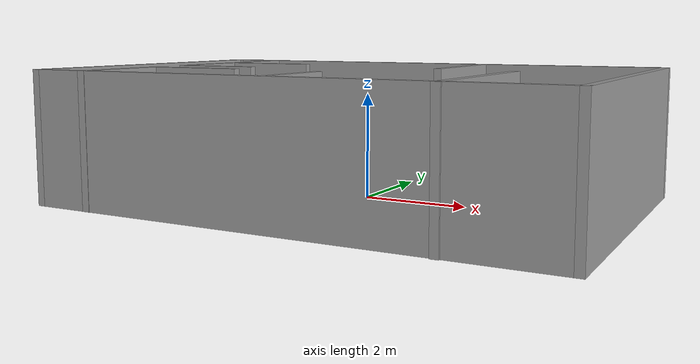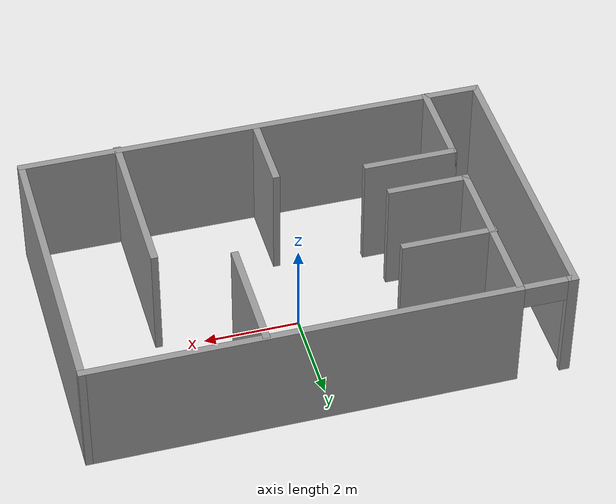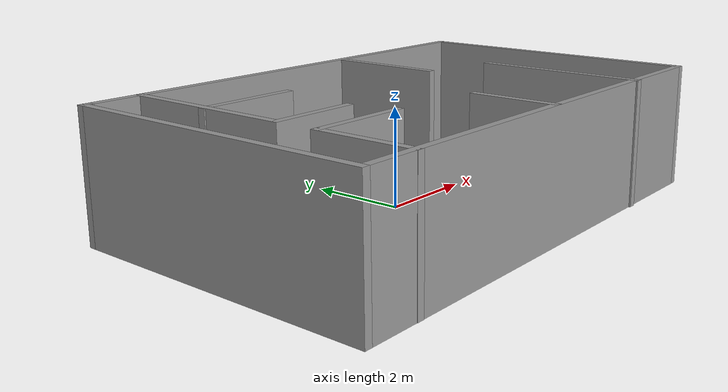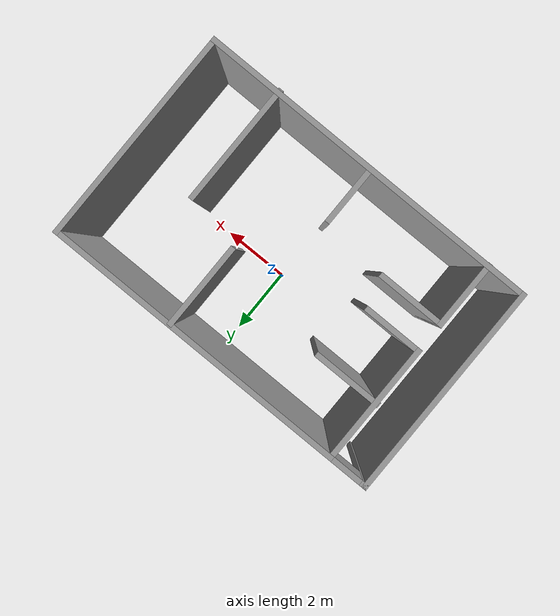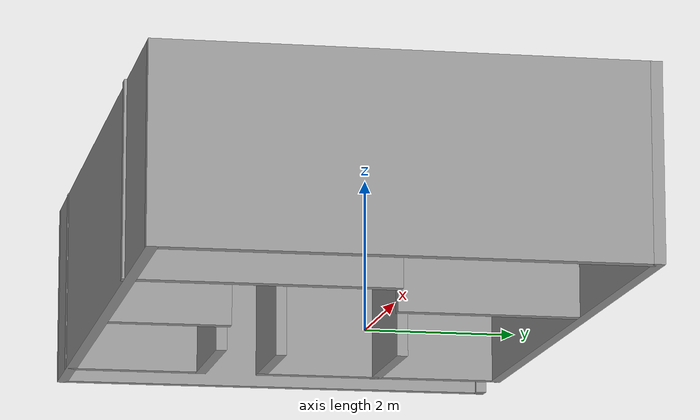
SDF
<?xml version='1.0'?>
<sdf version='1.6'>
  <model name='Maze'>
    <pose frame=''>0.041405 -0.440623 0 0 -0 0</pose>
    <link name='Wall_0'>
      <collision name='Wall_0_Collision'>
        <geometry>
          <box>
            <size>6.25 0.15 2.5</size>
          </box>
        </geometry>
        <pose frame=''>0 0 1.25 0 -0 0</pose>
      </collision>
      <visual name='Wall_0_Visual'>
        <pose frame=''>0 0 1.25 0 -0 0</pose>
        <geometry>
          <box>
            <size>6.25 0.15 2.5</size>
          </box>
        </geometry>
        <material>
          <script>
            <uri>file://media/materials/scripts/gazebo.material</uri>
            <name>Gazebo/Grey</name>
          </script>
          <emissive>1 1 1 1</emissive>
        </material>
        <meta>
          <layer>0</layer>
        </meta>
      </visual>
      <pose frame=''>-4.925 0.017238 0 0 -0 -1.5708</pose>
    </link>
    <link name='Wall_1'>
      <collision name='Wall_1_Collision'>
        <geometry>
          <box>
            <size>10 0.15 2.5</size>
          </box>
        </geometry>
        <pose frame=''>0 0 1.25 0 -0 0</pose>
      </collision>
      <visual name='Wall_1_Visual'>
        <pose frame=''>0 0 1.25 0 -0 0</pose>
        <geometry>
          <box>
            <size>10 0.15 2.5</size>
          </box>
        </geometry>
        <material>
          <script>
            <uri>file://media/materials/scripts/gazebo.material</uri>
            <name>Gazebo/Grey</name>
          </script>
          <emissive>1 1 1 1</emissive>
        </material>
        <meta>
          <layer>0</layer>
        </meta>
      </visual>
      <pose frame=''>-0 -3.03276 0 0 -0 0</pose>
    </link>
    <link name='Wall_10'>
      <collision name='Wall_10_Collision'>
        <geometry>
          <box>
            <size>2 0.15 2.5</size>
          </box>
        </geometry>
        <pose frame=''>0 0 1.25 0 -0 0</pose>
      </collision>
      <visual name='Wall_10_Visual'>
        <pose frame=''>0 0 1.25 0 -0 0</pose>
        <geometry>
          <box>
            <size>2 0.15 2.5</size>
          </box>
        </geometry>
        <material>
          <script>
            <uri>file://media/materials/scripts/gazebo.material</uri>
            <name>Gazebo/Grey</name>
          </script>
          <emissive>1 1 1 1</emissive>
        </material>
        <meta>
          <layer>0</layer>
        </meta>
      </visual>
      <pose frame=''>-3.81506 -2.11564 0 0 -0 1.5708</pose>
    </link>
    <link name='Wall_11'>
      <collision name='Wall_11_Collision'>
        <geometry>
          <box>
            <size>2 0.15 2.5</size>
          </box>
        </geometry>
        <pose frame=''>0 0 1.25 0 -0 0</pose>
      </collision>
      <visual name='Wall_11_Visual'>
        <pose frame=''>0 0 1.25 0 -0 0</pose>
        <geometry>
          <box>
            <size>2 0.15 2.5</size>
          </box>
        </geometry>
        <material>
          <script>
            <uri>file://media/materials/scripts/gazebo.material</uri>
            <name>Gazebo/Grey</name>
          </script>
          <emissive>1 1 1 1</emissive>
        </material>
        <meta>
          <layer>0</layer>
        </meta>
      </visual>
      <pose frame=''>-2.89006 -1.19064 0 0 -0 0</pose>
    </link>
    <link name='Wall_13'>
      <collision name='Wall_13_Collision'>
        <geometry>
          <box>
            <size>1.75 0.15 2.5</size>
          </box>
        </geometry>
        <pose frame=''>0 0 1.25 0 -0 0</pose>
      </collision>
      <visual name='Wall_13_Visual'>
        <pose frame=''>0 0 1.25 0 -0 0</pose>
        <geometry>
          <box>
            <size>1.75 0.15 2.5</size>
          </box>
        </geometry>
        <material>
          <script>
            <uri>file://media/materials/scripts/gazebo.material</uri>
            <name>Gazebo/Grey</name>
          </script>
          <emissive>1 1 1 1</emissive>
        </material>
        <meta>
          <layer>0</layer>
        </meta>
      </visual>
      <pose frame=''>-0.064432 -2.21404 0 0 -0 1.5708</pose>
    </link>
    <link name='Wall_15'>
      <collision name='Wall_15_Collision'>
        <geometry>
          <box>
            <size>2.5 0.15 2.5</size>
          </box>
        </geometry>
        <pose frame=''>0 0 1.25 0 -0 0</pose>
      </collision>
      <visual name='Wall_15_Visual'>
        <pose frame=''>0 0 1.25 0 -0 0</pose>
        <geometry>
          <box>
            <size>2.5 0.15 2.5</size>
          </box>
        </geometry>
        <material>
          <script>
            <uri>file://media/materials/scripts/gazebo.material</uri>
            <name>Gazebo/Grey</name>
          </script>
          <emissive>1 1 1 1</emissive>
        </material>
        <meta>
          <layer>0</layer>
        </meta>
      </visual>
      <pose frame=''>1.31878 1.84921 0 0 -0 -1.5708</pose>
    </link>
    <link name='Wall_17'>
      <collision name='Wall_17_Collision'>
        <geometry>
          <box>
            <size>3.5 0.15 2.5</size>
          </box>
        </geometry>
        <pose frame=''>0 0 1.25 0 -0 0</pose>
      </collision>
      <visual name='Wall_17_Visual'>
        <pose frame=''>0 0 1.25 0 -0 0</pose>
        <geometry>
          <box>
            <size>3.5 0.15 2.5</size>
          </box>
        </geometry>
        <material>
          <script>
            <uri>file://media/materials/scripts/gazebo.material</uri>
            <name>Gazebo/Grey</name>
          </script>
          <emissive>1 1 1 1</emissive>
        </material>
        <meta>
          <layer>0</layer>
        </meta>
      </visual>
      <pose frame=''>2.88819 -1.39224 0 0 -0 1.5708</pose>
    </link>
    <link name='Wall_2'>
      <collision name='Wall_2_Collision'>
        <geometry>
          <box>
            <size>6.25 0.15 2.5</size>
          </box>
        </geometry>
        <pose frame=''>0 0 1.25 0 -0 0</pose>
      </collision>
      <visual name='Wall_2_Visual'>
        <pose frame=''>0 0 1.25 0 -0 0</pose>
        <geometry>
          <box>
            <size>6.25 0.15 2.5</size>
          </box>
        </geometry>
        <material>
          <script>
            <uri>file://media/materials/scripts/gazebo.material</uri>
            <name>Gazebo/Grey</name>
          </script>
          <emissive>1 1 1 1</emissive>
        </material>
        <meta>
          <layer>0</layer>
        </meta>
      </visual>
      <pose frame=''>4.925 0.017238 0 0 -0 1.5708</pose>
    </link>
    <link name='Wall_3'>
      <pose frame=''>-0 3.06724 0 0 -0 3.14159</pose>
      <visual name='Wall_3_Visual_0'>
        <pose frame=''>-0.559831 0 1.25 0 -0 0</pose>
        <geometry>
          <box>
            <size>8.88034 0.15 2.5</size>
          </box>
        </geometry>
        <material>
          <script>
            <uri>file://media/materials/scripts/gazebo.material</uri>
            <name>Gazebo/Grey</name>
          </script>
          <emissive>1 1 1 1</emissive>
        </material>
        <meta>
          <layer>0</layer>
        </meta>
      </visual>
      <collision name='Wall_3_Collision_0'>
        <geometry>
          <box>
            <size>8.88034 0.15 2.5</size>
          </box>
        </geometry>
        <pose frame=''>-0.559831 0 1.25 0 -0 0</pose>
      </collision>
      <visual name='Wall_3_Visual_1'>
        <pose frame=''>4.89017 0 1.25 0 -0 0</pose>
        <geometry>
          <box>
            <size>0.219662 0.15 2.5</size>
          </box>
        </geometry>
        <material>
          <script>
            <uri>file://media/materials/scripts/gazebo.material</uri>
            <name>Gazebo/Grey</name>
          </script>
          <emissive>1 1 1 1</emissive>
        </material>
        <meta>
          <layer>0</layer>
        </meta>
      </visual>
      <collision name='Wall_3_Collision_1'>
        <geometry>
          <box>
            <size>0.219662 0.15 2.5</size>
          </box>
        </geometry>
        <pose frame=''>4.89017 0 1.25 0 -0 0</pose>
      </collision>
      <visual name='Wall_3_Visual_2'>
        <pose frame=''>4.33034 0 2.25 0 -0 0</pose>
        <geometry>
          <box>
            <size>0.9 0.15 0.5</size>
          </box>
        </geometry>
        <material>
          <script>
            <uri>file://media/materials/scripts/gazebo.material</uri>
            <name>Gazebo/Grey</name>
          </script>
          <emissive>1 1 1 1</emissive>
        </material>
        <meta>
          <layer>0</layer>
        </meta>
      </visual>
      <collision name='Wall_3_Collision_2'>
        <geometry>
          <box>
            <size>0.9 0.15 0.5</size>
          </box>
        </geometry>
        <pose frame=''>4.33034 0 2.25 0 -0 0</pose>
      </collision>
    </link>
    <link name='Wall_5'>
      <collision name='Wall_5_Collision'>
        <geometry>
          <box>
            <size>3.5 0.15 2.5</size>
          </box>
        </geometry>
        <pose frame=''>0 0 1.25 0 -0 0</pose>
      </collision>
      <visual name='Wall_5_Visual'>
        <pose frame=''>0 0 1.25 0 -0 0</pose>
        <geometry>
          <box>
            <size>3.5 0.15 2.5</size>
          </box>
        </geometry>
        <material>
          <script>
            <uri>file://media/materials/scripts/gazebo.material</uri>
            <name>Gazebo/Grey</name>
          </script>
          <emissive>1 1 1 1</emissive>
        </material>
        <meta>
          <layer>0</layer>
        </meta>
      </visual>
      <pose frame=''>-3.81506 1.34921 0 0 -0 -1.5708</pose>
    </link>
    <link name='Wall_6'>
      <collision name='Wall_6_Collision'>
        <geometry>
          <box>
            <size>1.75 0.15 2.5</size>
          </box>
        </geometry>
        <pose frame=''>0 0 1.25 0 -0 0</pose>
      </collision>
      <visual name='Wall_6_Visual'>
        <pose frame=''>0 0 1.25 0 -0 0</pose>
        <geometry>
          <box>
            <size>1.75 0.15 2.5</size>
          </box>
        </geometry>
        <material>
          <script>
            <uri>file://media/materials/scripts/gazebo.material</uri>
            <name>Gazebo/Grey</name>
          </script>
          <emissive>1 1 1 1</emissive>
        </material>
        <meta>
          <layer>0</layer>
        </meta>
      </visual>
      <pose frame=''>-3.01506 -0.325793 0 0 -0 0</pose>
    </link>
    <link name='Wall_8'>
      <collision name='Wall_8_Collision'>
        <geometry>
          <box>
            <size>2 0.15 2.5</size>
          </box>
        </geometry>
        <pose frame=''>0 0 1.25 0 -0 0</pose>
      </collision>
      <visual name='Wall_8_Visual'>
        <pose frame=''>0 0 1.25 0 -0 0</pose>
        <geometry>
          <box>
            <size>2 0.15 2.5</size>
          </box>
        </geometry>
        <material>
          <script>
            <uri>file://media/materials/scripts/gazebo.material</uri>
            <name>Gazebo/Grey</name>
          </script>
          <emissive>1 1 1 1</emissive>
        </material>
        <meta>
          <layer>0</layer>
        </meta>
      </visual>
      <pose frame=''>-2.91666 1.32179 0 0 -0 0</pose>
    </link>
    <static>1</static>
  </model>
</sdf>
